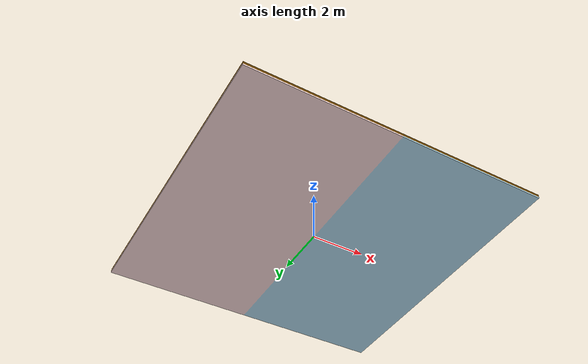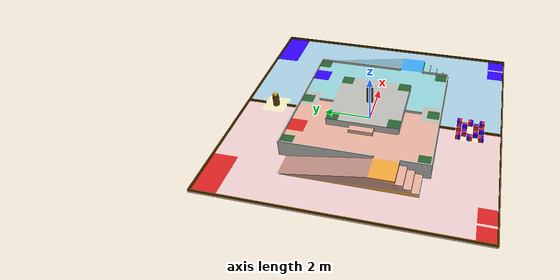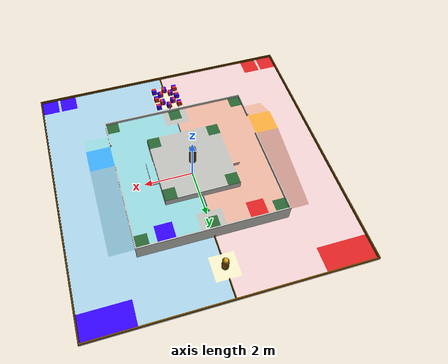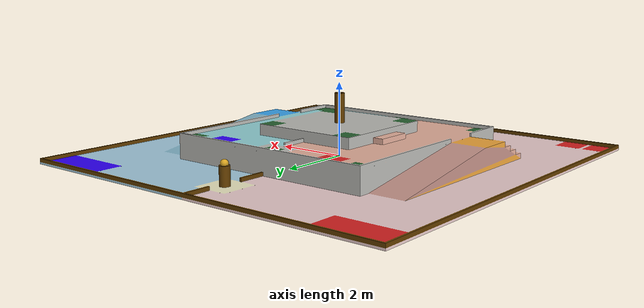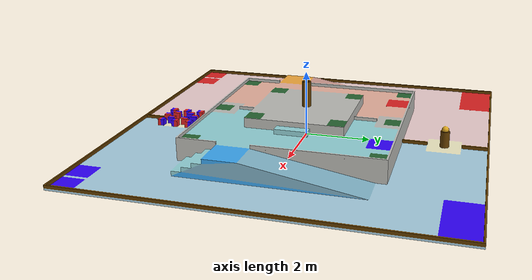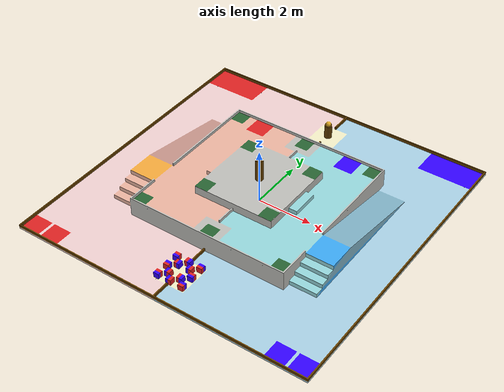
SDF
<?xml version="1.0"?>
<sdf version="1.6">
  <model name="rc2027_field">
    <static>true</static>
    <pose>0 0 0 0 0 0</pose>

    <link name="field_link">
      <!-- Visual: High-precision textured 3D mesh (Collada DAE)        -->
      <visual name="field_visual">
        <geometry>
          <mesh>
            <uri>model://rc2027_field/meshes/rc2027_field.dae</uri>
          </mesh>
        </geometry>
        <cast_shadows>false</cast_shadows>
      </visual>

      <!-- Collisions: Fully articulated rigid primitives               -->

      <!-- 1. Ground floor (11.1m x 11.1m, top surface at z=0.025m)    -->
      <collision name="col_ground">
        <pose>0 0 0.0 0 0 0</pose>
        <geometry>
          <box>
            <size>11.100 11.100 0.050</size>
          </box>
        </geometry>
        <surface>
          <friction>
            <ode>
              <mu>1.0</mu>
              <mu2>1.0</mu2>
            </ode>
          </friction>
        </surface>
      </collision>

      <!-- 2. Outer Perimeter Fences (4 sides, height=0.10m)           -->
      <collision name="col_fence_n">
        <pose>0 5.525 0.075 0 0 0</pose>
        <geometry>
          <box>
            <size>11.100 0.050 0.100</size>
          </box>
        </geometry>
      </collision>
      <collision name="col_fence_s">
        <pose>0 -5.525 0.075 0 0 0</pose>
        <geometry>
          <box>
            <size>11.100 0.050 0.100</size>
          </box>
        </geometry>
      </collision>
      <collision name="col_fence_e">
        <pose>5.525 0 0.075 0 0 0</pose>
        <geometry>
          <box>
            <size>0.050 11.100 0.100</size>
          </box>
        </geometry>
      </collision>
      <collision name="col_fence_w">
        <pose>-5.525 0 0.075 0 0 0</pose>
        <geometry>
          <box>
            <size>0.050 11.100 0.100</size>
          </box>
        </geometry>
      </collision>

      <!-- 3. Level 1 Platform (6.0m x 6.0m, top surface at z=0.625m)  -->
      <collision name="col_l1">
        <pose>0 0 0.325 0 0 0</pose>
        <geometry>
          <box>
            <size>6.000 6.000 0.600</size>
          </box>
        </geometry>
        <surface>
          <friction>
            <ode>
              <mu>1.0</mu>
              <mu2>1.0</mu2>
            </ode>
          </friction>
        </surface>
      </collision>

      <!-- 4. L1 Perimeter Barriers (4 sides)                          -->
      <collision name="col_l1fence_n">
        <pose>0 2.975 0.675 0 0 0</pose>
        <geometry>
          <box>
            <size>6.000 0.050 0.100</size>
          </box>
        </geometry>
      </collision>
      <collision name="col_l1fence_s">
        <pose>0 -2.975 0.675 0 0 0</pose>
        <geometry>
          <box>
            <size>6.000 0.050 0.100</size>
          </box>
        </geometry>
      </collision>
      <collision name="col_l1fence_e_north">
        <pose>2.975 1.075 0.675 0 0 0</pose>
        <geometry>
          <box>
            <size>0.050 3.750 0.100</size>
          </box>
        </geometry>
      </collision>
      <collision name="col_l1fence_e_south">
        <pose>2.975 -2.375 0.675 0 0 0</pose>
        <geometry>
          <box>
            <size>0.050 1.150 0.100</size>
          </box>
        </geometry>
      </collision>
      <collision name="col_l1fence_w_north">
        <pose>-2.975 1.075 0.675 0 0 0</pose>
        <geometry>
          <box>
            <size>0.050 3.750 0.100</size>
          </box>
        </geometry>
      </collision>
      <collision name="col_l1fence_w_south">
        <pose>-2.975 -2.375 0.675 0 0 0</pose>
        <geometry>
          <box>
            <size>0.050 1.150 0.100</size>
          </box>
        </geometry>
      </collision>

      <!-- 5. Level 2 Platform (3.0m x 3.0m, top surface at z=0.925m)  -->
      <collision name="col_l2">
        <pose>0 0 0.775 0 0 0</pose>
        <geometry>
          <box>
            <size>3.000 3.000 0.300</size>
          </box>
        </geometry>
        <surface>
          <friction>
            <ode>
              <mu>1.0</mu>
              <mu2>1.0</mu2>
            </ode>
          </friction>
        </surface>
      </collision>

      <!-- 6. L2 Access Stairs (Red & Blue, from L1 to L2)              -->
      <collision name="col_l2stair_red">
        <pose>-1.65 0 0.700 0 0 0</pose>
        <geometry>
          <box>
            <size>0.300 1.000 0.150</size>
          </box>
        </geometry>
      </collision>
      <collision name="col_l2stair_blue">
        <pose>1.65 0 0.700 0 0 0</pose>
        <geometry>
          <box>
            <size>0.300 1.000 0.150</size>
          </box>
        </geometry>
      </collision>

      <!-- 7. Transition Zone Red (West x in [-4, -3], y in [-2.7, 2.7])-->
      <collision name="col_band_red_plat">
        <pose>-3.5 -1.300 0.325 0 0 0</pose>
        <geometry>
          <box>
            <size>1.000 1.000 0.600</size>
          </box>
        </geometry>
      </collision>
      <collision name="col_band_red_step1">
        <pose>-3.5 -2.550 0.0875 0 0 0</pose>
        <geometry>
          <box>
            <size>1.000 0.300 0.150</size>
          </box>
        </geometry>
      </collision>
      <collision name="col_band_red_step2">
        <pose>-3.5 -2.250 0.1625 0 0 0</pose>
        <geometry>
          <box>
            <size>1.000 0.300 0.325</size>
          </box>
        </geometry>
      </collision>
      <collision name="col_band_red_step3">
        <pose>-3.5 -1.950 0.2375 0 0 0</pose>
        <geometry>
          <box>
            <size>1.000 0.300 0.475</size>
          </box>
        </geometry>
      </collision>
      <!-- Red ramp (9.74 deg slope, length 3.55m, allows climbing)   -->
      <collision name="col_band_red_ramp">
        <pose>-3.5 0.9460 0.3004 -0.16978 0 0</pose>
        <geometry>
          <box>
            <size>1.000 3.551 0.050</size>
          </box>
        </geometry>
        <surface>
          <friction>
            <ode>
              <mu>1.2</mu>
              <mu2>1.2</mu2>
            </ode>
          </friction>
        </surface>
      </collision>

      <!-- 8. Transition Zone Blue (East x in [3, 4], y in [-2.7, 2.7]) -->
      <collision name="col_band_blue_plat">
        <pose>3.5 -1.300 0.325 0 0 0</pose>
        <geometry>
          <box>
            <size>1.000 1.000 0.600</size>
          </box>
        </geometry>
      </collision>
      <collision name="col_band_blue_step1">
        <pose>3.5 -2.550 0.0875 0 0 0</pose>
        <geometry>
          <box>
            <size>1.000 0.300 0.150</size>
          </box>
        </geometry>
      </collision>
      <collision name="col_band_blue_step2">
        <pose>3.5 -2.250 0.1625 0 0 0</pose>
        <geometry>
          <box>
            <size>1.000 0.300 0.325</size>
          </box>
        </geometry>
      </collision>
      <collision name="col_band_blue_step3">
        <pose>3.5 -1.950 0.2375 0 0 0</pose>
        <geometry>
          <box>
            <size>1.000 0.300 0.475</size>
          </box>
        </geometry>
      </collision>
      <!-- Blue ramp (9.74 deg slope, length 3.55m, allows climbing)  -->
      <collision name="col_band_blue_ramp">
        <pose>3.5 0.9460 0.3004 -0.16978 0 0</pose>
        <geometry>
          <box>
            <size>1.000 3.551 0.050</size>
          </box>
        </geometry>
        <surface>
          <friction>
            <ode>
              <mu>1.2</mu>
              <mu2>1.2</mu2>
            </ode>
          </friction>
        </surface>
      </collision>

      <!-- 9. Pillars                                                  -->
      <!-- Center Pillar (h=0.80m, radius=0.135m, top z=1.725m)       -->
      <collision name="col_pillar_centre">
        <pose>0 0 1.325 0 0 0</pose>
        <geometry>
          <cylinder>
            <radius>0.135</radius>
            <length>0.800</length>
          </cylinder>
        </geometry>
      </collision>
      <!-- Mustika Pillar (h=0.40m, radius=0.135m, at (0, 4.25))       -->
      <collision name="mustika_pillar_col">
        <pose>0 4.25 0.225 0 0 0</pose>
        <geometry>
          <cylinder>
            <radius>0.135</radius>
            <length>0.400</length>
          </cylinder>
        </geometry>
      </collision>

    </link>
  </model>
</sdf>
